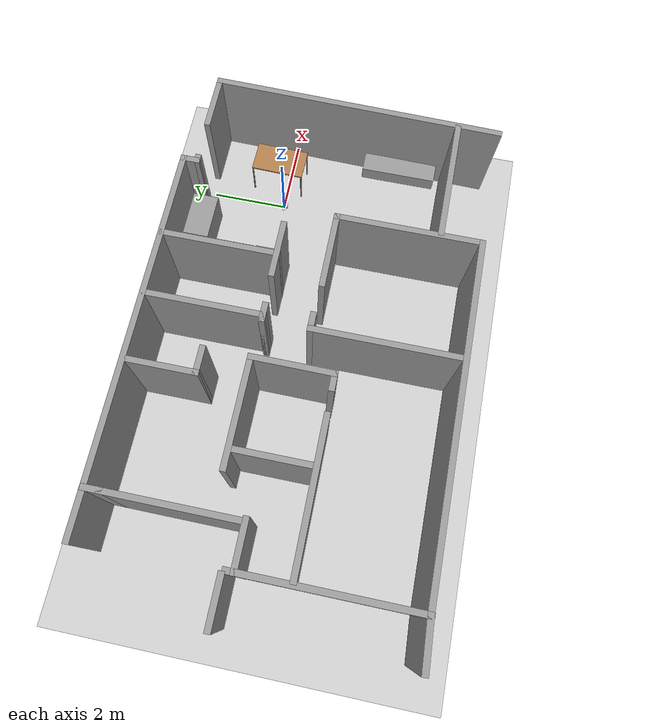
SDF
<sdf version="1.6">
 <world name="default">
  <model name="ground_plane">
   <static>1</static>
   <link name="link">
    <collision name="collision">
     <geometry><plane><normal>0 0 1</normal><size>100 100</size></plane></geometry>
     <surface><friction><ode><mu>100</mu><mu2>50</mu2></ode></friction></surface>
    </collision>
    <visual name="visual">
     <cast_shadows>0</cast_shadows>
     <geometry><plane><normal>0 0 1</normal><size>100 100</size></plane></geometry>
     <material>
      <script><uri>file://media/materials/scripts/gazebo.material</uri><name>Gazebo/Grey</name></script>
     </material>
    </visual>
   </link>
  </model>
  <gravity>0 0 -9.8</gravity>
  <magnetic_field>6e-06 2.3e-05 -4.2e-05</magnetic_field>
  <atmosphere type="adiabatic"/>
  <physics name="default_physics" default="0" type="ode">
   <max_step_size>0.001</max_step_size>
   <real_time_factor>1</real_time_factor>
   <real_time_update_rate>1000</real_time_update_rate>
  </physics>
  <scene><ambient>0.4 0.4 0.4 1</ambient><background>0.7 0.7 0.7 1</background><shadows>1</shadows></scene>
  <spherical_coordinates>
   <surface_model>EARTH_WGS84</surface_model>
   <latitude_deg>0</latitude_deg>
   <longitude_deg>0</longitude_deg>
   <elevation>0</elevation>
   <heading_deg>0</heading_deg>
  </spherical_coordinates>
  <model name="whiz_ex">
   <pose>-4.64105 -1.45792 0 0 -0 0</pose>
   <link name="Wall_10">
    <collision name="Wall_10_Collision">
     <geometry><box><size>1.25 0.15 2.5</size></box></geometry>
     <pose>0 0 1.25 0 -0 0</pose>
    </collision>
    <visual name="Wall_10_Visual">
     <pose>0 0 1.25 0 -0 0</pose>
     <geometry><box><size>1.25 0.15 2.5</size></box></geometry>
     <material>
      <script><uri>file://media/materials/scripts/gazebo.material</uri><name>Gazebo/Grey</name></script>
      <ambient>1 1 1 1</ambient>
     </material>
    </visual>
    <pose>-6.05295 0.541414 0 0 -0 3.14159</pose>
   </link>
   <link name="Wall_12">
    <collision name="Wall_12_Collision">
     <geometry><box><size>4.4737 0.15 2.5</size></box></geometry>
     <pose>0 0 1.25 0 -0 0</pose>
    </collision>
    <visual name="Wall_12_Visual">
     <pose>0 0 1.25 0 -0 0</pose>
     <geometry><box><size>4.4737 0.15 2.5</size></box></geometry>
     <material>
      <script><uri>file://media/materials/scripts/gazebo.material</uri><name>Gazebo/Grey</name></script>
      <ambient>1 1 1 1</ambient>
     </material>
    </visual>
    <pose>-5.40643 -1.68841 0 0 -0 1.5708</pose>
   </link>
   <link name="Wall_15">
    <collision name="Wall_15_Collision">
     <geometry><box><size>1.25111 0.15 2.5</size></box></geometry>
     <pose>0 0 1.25 0 -0 0</pose>
    </collision>
    <visual name="Wall_15_Visual">
     <pose>0 0 1.25 0 -0 0</pose>
     <geometry><box><size>1.25111 0.15 2.5</size></box></geometry>
     <material>
      <script><uri>file://media/materials/scripts/gazebo.material</uri><name>Gazebo/Grey</name></script>
      <ambient>1 1 1 1</ambient>
     </material>
    </visual>
    <pose>-5.95643 -3.86341 0 0 0 -3.09668</pose>
   </link>
   <link name="Wall_18">
    <collision name="Wall_18_Collision">
     <geometry><box><size>0.5 0.15 2.5</size></box></geometry>
     <pose>0 0 1.25 0 -0 0</pose>
    </collision>
    <visual name="Wall_18_Visual">
     <pose>0 0 1.25 0 -0 0</pose>
     <geometry><box><size>0.5 0.15 2.5</size></box></geometry>
     <material>
      <script><uri>file://media/materials/scripts/gazebo.material</uri><name>Gazebo/Grey</name></script>
      <ambient>1 1 1 1</ambient>
     </material>
    </visual>
    <pose>0.389091 -0.180158 0 0 -0 0</pose>
   </link>
   <link name="Wall_2">
    <collision name="Wall_2_Collision">
     <geometry><box><size>7.5674 0.15 2.5</size></box></geometry>
     <pose>0 0 1.25 0 -0 0</pose>
    </collision>
    <visual name="Wall_2_Visual">
     <pose>0 0 1.25 0 -0 0</pose>
     <geometry><box><size>7.5674 0.15 2.5</size></box></geometry>
     <material>
      <script><uri>file://media/materials/scripts/gazebo.material</uri><name>Gazebo/Grey</name></script>
      <ambient>1 1 1 1</ambient>
     </material>
    </visual>
    <pose>6.52247 -0.153961 0 0 0 -1.59207</pose>
   </link>
   <link name="Wall_20">
    <collision name="Wall_20_Collision">
     <geometry><box><size>3.75 0.15 2.5</size></box></geometry>
     <pose>0 0 1.25 0 -0 0</pose>
    </collision>
    <visual name="Wall_20_Visual">
     <pose>0 0 1.25 0 -0 0</pose>
     <geometry><box><size>3.75 0.15 2.5</size></box></geometry>
     <material>
      <script><uri>file://media/materials/scripts/gazebo.material</uri><name>Gazebo/Grey</name></script>
      <ambient>1 1 1 1</ambient>
     </material>
    </visual>
    <pose>0.214091 -1.98016 0 0 0 -1.5708</pose>
   </link>
   <link name="Wall_22">
    <collision name="Wall_22_Collision">
     <geometry><box><size>2 0.15 2.5</size></box></geometry>
     <pose>0 0 1.25 0 -0 0</pose>
    </collision>
    <visual name="Wall_22_Visual">
     <pose>0 0 1.25 0 -0 0</pose>
     <geometry><box><size>2 0.15 2.5</size></box></geometry>
     <material>
      <script><uri>file://media/materials/scripts/gazebo.material</uri><name>Gazebo/Grey</name></script>
      <ambient>1 1 1 1</ambient>
     </material>
    </visual>
    <pose>2.30947 -0.232759 0 0 -0 0</pose>
   </link>
   <link name="Wall_23">
    <collision name="Wall_23_Collision">
     <geometry><box><size>3.75 0.15 2.5</size></box></geometry>
     <pose>0 0 1.25 0 -0 0</pose>
    </collision>
    <visual name="Wall_23_Visual">
     <pose>0 0 1.25 0 -0 0</pose>
     <geometry><box><size>3.75 0.15 2.5</size></box></geometry>
     <material>
      <script><uri>file://media/materials/scripts/gazebo.material</uri><name>Gazebo/Grey</name></script>
      <ambient>1 1 1 1</ambient>
     </material>
    </visual>
    <pose>3.23447 -2.03276 0 0 0 -1.5708</pose>
   </link>
   <link name="Wall_25">
    <collision name="Wall_25_Collision">
     <geometry><box><size>3.25 0.15 2.5</size></box></geometry>
     <pose>0 0 1.25 0 -0 0</pose>
    </collision>
    <visual name="Wall_25_Visual">
     <pose>0 0 1.25 0 -0 0</pose>
     <geometry><box><size>3.25 0.15 2.5</size></box></geometry>
     <material>
      <script><uri>file://media/materials/scripts/gazebo.material</uri><name>Gazebo/Grey</name></script>
      <ambient>1 1 1 1</ambient>
     </material>
    </visual>
    <pose>4.85442 -2.81022 0 0 -0 0</pose>
   </link>
   <link name="Wall_27">
    <collision name="Wall_27_Collision">
     <geometry><box><size>8.79095 0.15 2.5</size></box></geometry>
     <pose>0 0 1.25 0 -0 0</pose>
    </collision>
    <visual name="Wall_27_Visual">
     <pose>0 0 1.25 0 -0 0</pose>
     <geometry><box><size>8.79095 0.15 2.5</size></box></geometry>
     <material>
      <script><uri>file://media/materials/scripts/gazebo.material</uri><name>Gazebo/Grey</name></script>
      <ambient>1 1 1 1</ambient>
     </material>
    </visual>
    <pose>-1.08598 -3.83573 0 0 -0 0.000687</pose>
   </link>
   <link name="Wall_31">
    <collision name="Wall_31_Collision">
     <geometry><box><size>2.76315 0.15 2.5</size></box></geometry>
     <pose>0 0 1.25 0 -0 0</pose>
    </collision>
    <visual name="Wall_31_Visual">
     <pose>0 0 1.25 0 -0 0</pose>
     <geometry><box><size>2.76315 0.15 2.5</size></box></geometry>
     <material>
      <script><uri>file://media/materials/scripts/gazebo.material</uri><name>Gazebo/Grey</name></script>
      <ambient>1 1 1 1</ambient>
     </material>
    </visual>
    <pose>-2.04362 1.02243 0 0 -0 0</pose>
   </link>
   <link name="Wall_33">
    <collision name="Wall_33_Collision">
     <geometry><box><size>0.5 0.15 2.5</size></box></geometry>
     <pose>0 0 1.25 0 -0 0</pose>
    </collision>
    <visual name="Wall_33_Visual">
     <pose>0 0 1.25 0 -0 0</pose>
     <geometry><box><size>0.5 0.15 2.5</size></box></geometry>
     <material>
      <script><uri>file://media/materials/scripts/gazebo.material</uri><name>Gazebo/Grey</name></script>
      <ambient>1 1 1 1</ambient>
     </material>
    </visual>
    <pose>-0.920191 -0.947573 0 0 -0 3.14159</pose>
   </link>
   <link name="Wall_38">
    <collision name="Wall_38_Collision">
     <geometry><box><size>3.75 0.15 2.5</size></box></geometry>
     <pose>0 0 1.25 0 -0 0</pose>
    </collision>
    <visual name="Wall_38_Visual">
     <pose>0 0 1.25 0 -0 0</pose>
     <geometry><box><size>3.75 0.15 2.5</size></box></geometry>
     <material>
      <script><uri>file://media/materials/scripts/gazebo.material</uri><name>Gazebo/Grey</name></script>
      <ambient>1 1 1 1</ambient>
     </material>
    </visual>
    <pose>-3.52433 -0.96048 0 0 -0 3.14159</pose>
   </link>
   <link name="Wall_4">
    <collision name="Wall_4_Collision">
     <geometry><box><size>1.5 0.15 2.5</size></box></geometry>
     <pose>0 0 1.25 0 -0 0</pose>
    </collision>
    <visual name="Wall_4_Visual">
     <pose>0 0 1.25 0 -0 0</pose>
     <geometry><box><size>1.5 0.15 2.5</size></box></geometry>
     <material>
      <script><uri>file://media/materials/scripts/gazebo.material</uri><name>Gazebo/Grey</name></script>
      <ambient>1 1 1 1</ambient>
     </material>
    </visual>
    <pose>5.92637 3.5539 0 0 -0 3.14159</pose>
   </link>
   <link name="Wall_40">
    <collision name="Wall_40_Collision">
     <geometry><box><size>2 0.15 2.5</size></box></geometry>
     <pose>0 0 1.25 0 -0 0</pose>
    </collision>
    <visual name="Wall_40_Visual">
     <pose>0 0 1.25 0 -0 0</pose>
     <geometry><box><size>2 0.15 2.5</size></box></geometry>
     <material>
      <script><uri>file://media/materials/scripts/gazebo.material</uri><name>Gazebo/Grey</name></script>
      <ambient>1 1 1 1</ambient>
     </material>
    </visual>
    <pose>-2.90026 0.016761 0 0 0 -1.5708</pose>
   </link>
   <link name="Wall_44">
    <collision name="Wall_44_Collision">
     <geometry><box><size>1.25 0.15 2.5</size></box></geometry>
     <pose>0 0 1.25 0 -0 0</pose>
    </collision>
    <visual name="Wall_44_Visual">
     <pose>0 0 1.25 0 -0 0</pose>
     <geometry><box><size>1.25 0.15 2.5</size></box></geometry>
     <material>
      <script><uri>file://media/materials/scripts/gazebo.material</uri><name>Gazebo/Grey</name></script>
      <ambient>1 1 1 1</ambient>
     </material>
    </visual>
    <pose>-4.85954 0.293641 0 0 -0 3.14159</pose>
   </link>
   <link name="Wall_47">
    <collision name="Wall_47_Collision">
     <geometry><box><size>2.12002 0.15 2.5</size></box></geometry>
     <pose>0 0 1.25 0 -0 0</pose>
    </collision>
    <visual name="Wall_47_Visual">
     <pose>0 0 1.25 0 -0 0</pose>
     <geometry><box><size>2.12002 0.15 2.5</size></box></geometry>
     <material>
      <script><uri>file://media/materials/scripts/gazebo.material</uri><name>Gazebo/Grey</name></script>
      <ambient>1 1 1 1</ambient>
     </material>
    </visual>
    <pose>-0.741115 0.037427 0 0 -0 1.56666</pose>
   </link>
   <link name="Wall_49">
    <collision name="Wall_49_Collision">
     <geometry><box><size>1.75 0.15 2.5</size></box></geometry>
     <pose>0 0 1.25 0 -0 0</pose>
    </collision>
    <visual name="Wall_49_Visual">
     <pose>0 0 1.25 0 -0 0</pose>
     <geometry><box><size>1.75 0.15 2.5</size></box></geometry>
     <material>
      <script><uri>file://media/materials/scripts/gazebo.material</uri><name>Gazebo/Grey</name></script>
      <ambient>1 1 1 1</ambient>
     </material>
    </visual>
    <pose>-1.36298 2.95769 0 0 0 -1.5708</pose>
   </link>
   <link name="Wall_50">
    <collision name="Wall_50_Collision">
     <geometry><box><size>0.75 0.15 2.5</size></box></geometry>
     <pose>0 0 1.25 0 -0 0</pose>
    </collision>
    <visual name="Wall_50_Visual">
     <pose>0 0 1.25 0 -0 0</pose>
     <geometry><box><size>0.75 0.15 2.5</size></box></geometry>
     <material>
      <script><uri>file://media/materials/scripts/gazebo.material</uri><name>Gazebo/Grey</name></script>
      <ambient>1 1 1 1</ambient>
     </material>
    </visual>
    <pose>-1.06298 2.15769 0 0 -0 0</pose>
   </link>
   <link name="Wall_52">
    <collision name="Wall_52_Collision">
     <geometry><box><size>3 0.15 2.5</size></box></geometry>
     <pose>0 0 1.25 0 -0 0</pose>
    </collision>
    <visual name="Wall_52_Visual">
     <pose>0 0 1.25 0 -0 0</pose>
     <geometry><box><size>3 0.15 2.5</size></box></geometry>
     <material>
      <script><uri>file://media/materials/scripts/gazebo.material</uri><name>Gazebo/Grey</name></script>
      <ambient>1 1 1 1</ambient>
     </material>
    </visual>
    <pose>0.325194 2.40113 0 0 0 -1.5708</pose>
   </link>
   <link name="Wall_53">
    <collision name="Wall_53_Collision">
     <geometry><box><size>0.25 0.15 2.5</size></box></geometry>
     <pose>0 0 1.25 0 -0 0</pose>
    </collision>
    <visual name="Wall_53_Visual">
     <pose>0 0 1.25 0 -0 0</pose>
     <geometry><box><size>0.25 0.15 2.5</size></box></geometry>
     <material>
      <script><uri>file://media/materials/scripts/gazebo.material</uri><name>Gazebo/Grey</name></script>
      <ambient>1 1 1 1</ambient>
     </material>
    </visual>
    <pose>0.275194 0.976133 0 0 -0 3.14159</pose>
   </link>
   <link name="Wall_54">
    <collision name="Wall_54_Collision">
     <geometry><box><size>0.5 0.15 2.5</size></box></geometry>
     <pose>0 0 1.25 0 -0 0</pose>
    </collision>
    <visual name="Wall_54_Visual">
     <pose>0 0 1.25 0 -0 0</pose>
     <geometry><box><size>0.5 0.15 2.5</size></box></geometry>
     <material>
      <script><uri>file://media/materials/scripts/gazebo.material</uri><name>Gazebo/Grey</name></script>
      <ambient>1 1 1 1</ambient>
     </material>
    </visual>
    <pose>0.400194 0.976133 0 0 -0 0</pose>
   </link>
   <link name="Wall_56">
    <collision name="Wall_56_Collision">
     <geometry><box><size>1.5 0.15 2.5</size></box></geometry>
     <pose>0 0 1.25 0 -0 0</pose>
    </collision>
    <visual name="Wall_56_Visual">
     <pose>0 0 1.25 0 -0 0</pose>
     <geometry><box><size>1.5 0.15 2.5</size></box></geometry>
     <material>
      <script><uri>file://media/materials/scripts/gazebo.material</uri><name>Gazebo/Grey</name></script>
      <ambient>1 1 1 1</ambient>
     </material>
    </visual>
    <pose>2.08001 1.00491 0 0 -0 0</pose>
   </link>
   <link name="Wall_58">
    <collision name="Wall_58_Collision">
     <geometry><box><size>3 0.15 2.5</size></box></geometry>
     <pose>0 0 1.25 0 -0 0</pose>
    </collision>
    <visual name="Wall_58_Visual">
     <pose>0 0 1.25 0 -0 0</pose>
     <geometry><box><size>3 0.15 2.5</size></box></geometry>
     <material>
      <script><uri>file://media/materials/scripts/gazebo.material</uri><name>Gazebo/Grey</name></script>
      <ambient>1 1 1 1</ambient>
     </material>
    </visual>
    <pose>1.95253 2.42395 0 0 0 -1.5708</pose>
   </link>
   <link name="Wall_6">
    <collision name="Wall_6_Collision">
     <geometry><box><size>0.25 0.15 2.5</size></box></geometry>
     <pose>0 0 1.25 0 -0 0</pose>
    </collision>
    <visual name="Wall_6_Visual">
     <pose>0 0 1.25 0 -0 0</pose>
     <geometry><box><size>0.25 0.15 2.5</size></box></geometry>
     <material>
      <script><uri>file://media/materials/scripts/gazebo.material</uri><name>Gazebo/Grey</name></script>
      <ambient>1 1 1 1</ambient>
     </material>
    </visual>
    <pose>4.14705 3.54141 0 0 -0 3.14159</pose>
   </link>
   <link name="Wall_60">
    <collision name="Wall_60_Collision">
     <geometry><box><size>0.5 0.15 2.5</size></box></geometry>
     <pose>0 0 1.25 0 -0 0</pose>
    </collision>
    <visual name="Wall_60_Visual">
     <pose>0 0 1.25 0 -0 0</pose>
     <geometry><box><size>0.5 0.15 2.5</size></box></geometry>
     <material>
      <script><uri>file://media/materials/scripts/gazebo.material</uri><name>Gazebo/Grey</name></script>
      <ambient>1 1 1 1</ambient>
     </material>
    </visual>
    <pose>-4.35804 3.71031 0 0 0 -1.5708</pose>
   </link>
   <link name="Wall_64">
    <collision name="Wall_64_Collision">
     <geometry><box><size>3.25 0.15 2.5</size></box></geometry>
     <pose>0 0 1.25 0 -0 0</pose>
    </collision>
    <visual name="Wall_64_Visual">
     <pose>0 0 1.25 0 -0 0</pose>
     <geometry><box><size>3.25 0.15 2.5</size></box></geometry>
     <material>
      <script><uri>file://media/materials/scripts/gazebo.material</uri><name>Gazebo/Grey</name></script>
      <ambient>1 1 1 1</ambient>
     </material>
    </visual>
    <pose>-4.35804 1.98531 0 0 0 -1.5708</pose>
   </link>
   <link name="Wall_7">
    <collision name="Wall_7_Collision">
     <geometry><box><size>0.5 0.15 2.5</size></box></geometry>
     <pose>0 0 1.25 0 -0 0</pose>
    </collision>
    <visual name="Wall_7_Visual">
     <pose>0 0 1.25 0 -0 0</pose>
     <geometry><box><size>0.5 0.15 2.5</size></box></geometry>
     <material>
      <script><uri>file://media/materials/scripts/gazebo.material</uri><name>Gazebo/Grey</name></script>
      <ambient>1 1 1 1</ambient>
     </material>
    </visual>
    <pose>4.09705 3.71641 0 0 -0 1.5708</pose>
   </link>
   <link name="Wall_8">
    <collision name="Wall_8_Collision">
     <geometry><box><size>9.75 0.15 2.5</size></box></geometry>
     <pose>0 0 1.25 0 -0 0</pose>
    </collision>
    <visual name="Wall_8_Visual">
     <pose>0 0 1.25 0 -0 0</pose>
     <geometry><box><size>9.75 0.15 2.5</size></box></geometry>
     <material>
      <script><uri>file://media/materials/scripts/gazebo.material</uri><name>Gazebo/Grey</name></script>
      <ambient>1 1 1 1</ambient>
     </material>
    </visual>
    <pose>-0.702951 3.89141 0 0 -0 3.14159</pose>
   </link>
   <static>1</static>
  </model>
  <model name="table">
   <static>0</static>
   <link name="link">
    <collision name="surface">
     <pose>0 0 1 0 -0 0</pose>
     <geometry><box><size>1.5 0.8 0.03</size></box></geometry>
     <surface><friction><ode><mu>0.6</mu><mu2>0.6</mu2></ode></friction></surface>
    </collision>
    <visual name="visual1">
     <pose>0 0 1 0 -0 0</pose>
     <geometry><box><size>1.4 0.8 0.04</size></box></geometry>
     <material>
      <script><uri>file://media/materials/scripts/gazebo.material</uri><name>Gazebo/Wood</name></script>
     </material>
    </visual>
    <collision name="front_left_leg">
     <pose>0.68 0.38 0.5 0 -0 0</pose>
     <geometry><cylinder><radius>0.02</radius><length>1</length></cylinder></geometry>
    </collision>
    <visual name="front_left_leg">
     <pose>0.68 0.38 0.5 0 -0 0</pose>
     <geometry><cylinder><radius>0.02</radius><length>1</length></cylinder></geometry>
     <material>
      <script><uri>file://media/materials/scripts/gazebo.material</uri><name>Gazebo/Grey</name></script>
     </material>
    </visual>
    <collision name="front_right_leg">
     <pose>0.68 -0.38 0.5 0 -0 0</pose>
     <geometry><cylinder><radius>0.02</radius><length>1</length></cylinder></geometry>
    </collision>
    <visual name="front_right_leg">
     <pose>0.68 -0.38 0.5 0 -0 0</pose>
     <geometry><cylinder><radius>0.02</radius><length>1</length></cylinder></geometry>
     <material>
      <script><uri>file://media/materials/scripts/gazebo.material</uri><name>Gazebo/Grey</name></script>
     </material>
    </visual>
    <collision name="back_right_leg">
     <pose>-0.68 -0.38 0.5 0 -0 0</pose>
     <geometry><cylinder><radius>0.02</radius><length>1</length></cylinder></geometry>
    </collision>
    <visual name="back_right_leg">
     <pose>-0.68 -0.38 0.5 0 -0 0</pose>
     <geometry><cylinder><radius>0.02</radius><length>1</length></cylinder></geometry>
     <material>
      <script><uri>file://media/materials/scripts/gazebo.material</uri><name>Gazebo/Grey</name></script>
     </material>
    </visual>
    <collision name="back_left_leg">
     <pose>-0.68 0.38 0.5 0 -0 0</pose>
     <geometry><cylinder><radius>0.02</radius><length>1</length></cylinder></geometry>
    </collision>
    <visual name="back_left_leg">
     <pose>-0.68 0.38 0.5 0 -0 0</pose>
     <geometry><cylinder><radius>0.02</radius><length>1</length></cylinder></geometry>
     <material>
      <script><uri>file://media/materials/scripts/gazebo.material</uri><name>Gazebo/Grey</name></script>
     </material>
    </visual>
    <inertial>
     <inertia><ixx>1</ixx><ixy>0</ixy><ixz>0</ixz><iyy>1</iyy><iyz>0</iyz><izz>1</izz></inertia>
     <mass>1</mass>
    </inertial>
   </link>
   <pose>0.849805 0.280665 -9e-06 1e-06 -1e-06 1.54594</pose>
  </model>
  <model name="som_o_robot_20cm">
   <link name="base_footprint">
    <inertial>
     <pose>0 0 -0.041034 0 -0 0</pose>
     <mass>0.2011</mass>
     <inertia>
      <ixx>0.00304276</ixx>
      <ixy>0</ixy>
      <ixz>0</ixz>
      <iyy>0.00294376</iyy>
      <iyz>0</iyz>
      <izz>0.0042</izz>
     </inertia>
    </inertial>
    <collision name="base_footprint_fixed_joint_lump__base_link_collision">
     <pose>0 0 0.049546 0 -0 0</pose>
     <geometry><box><size>0.2 0.13 0.183091</size></box></geometry>
    </collision>
    <collision name="base_footprint_fixed_joint_lump__imu_link_collision_1">
     <pose>0 0 0.148 0 -0 0</pose>
     <geometry><box><size>0.001 0.001 0.001</size></box></geometry>
    </collision>
    <visual name="base_footprint_visual">
     <geometry><box><size>0.001 0.001 0.001</size></box></geometry>
     <material><script><uri>__default__</uri><name>__default__</name></script></material>
    </visual>
    <visual name="base_footprint_fixed_joint_lump__base_link_visual_1">
     <pose>0 0 -0.042 0 -0 0</pose>
     <geometry>
      <mesh>
       <scale>1 1 1</scale>
       <uri>/home/obotron-tutor/sim-robot/src/som_o_description/meshes/obodroid1.stl</uri>
      </mesh>
     </geometry>
     <material>
      <script><name>Gazebo/White</name><uri>file://media/materials/scripts/gazebo.material</uri></script>
     </material>
    </visual>
    <visual name="base_footprint_fixed_joint_lump__imu_link_visual_2">
     <pose>0 0 0.148 0 -0 0</pose>
     <geometry><box><size>0.001 0.001 0.001</size></box></geometry>
    </visual>
    <visual name="base_footprint_fixed_joint_lump__lidar_link_visual_3">
     <pose>0.07 0 0.174891 0 -0 0</pose>
     <geometry><box><size>0.005 0.005 0.005</size></box></geometry>
     <material>
      <script><name>Gazebo/Blue</name><uri>file://media/materials/scripts/gazebo.material</uri></script>
     </material>
    </visual>
    <visual name="base_footprint_fixed_joint_lump__multicam_link_visual_4">
     <pose>0.07 0 0.189891 0 -0 0</pose>
     <geometry><box><size>0.003 0.003 0.003</size></box></geometry>
     <material>
      <script><name>Gazebo/Grey</name><uri>file://media/materials/scripts/gazebo.material</uri></script>
     </material>
    </visual>
    <visual name="base_footprint_fixed_joint_lump__multicam_link_left_visual_5">
     <pose>0.07 0 0.189891 0 -0 0</pose>
     <geometry><box><size>0.003 0.003 0.003</size></box></geometry>
     <material>
      <script><name>Gazebo/Red</name><uri>file://media/materials/scripts/gazebo.material</uri></script>
     </material>
    </visual>
    <visual name="base_footprint_fixed_joint_lump__multicam_link_right_visual_6">
     <pose>0.07 0 0.189891 0 -0 0</pose>
     <geometry><box><size>0.003 0.003 0.003</size></box></geometry>
     <material>
      <script><name>Gazebo/Red</name><uri>file://media/materials/scripts/gazebo.material</uri></script>
     </material>
    </visual>
    <sensor name="lidar_sensor" type="ray">
     <visualize>1</visualize>
     <update_rate>40</update_rate>
     <ray>
      <scan>
       <horizontal>
        <samples>360</samples>
        <resolution>1</resolution>
        <min_angle>-2</min_angle>
        <max_angle>2</max_angle>
       </horizontal>
       <vertical><samples>1</samples><min_angle>0</min_angle><max_angle>0</max_angle></vertical>
      </scan>
      <range><min>0.1</min><max>6</max><resolution>0.001</resolution></range>
      <noise><type>gaussian</type><mean>0.01</mean><stddev>0.015</stddev></noise>
     </ray>
     <plugin name="gazebo_ros_head_hokuyo_controller" filename="libgazebo_ros_laser.so">
      <topicName>/scan</topicName>
      <frameName>lidar_link</frameName>
      <robotNamespace>/</robotNamespace>
     </plugin>
     <pose>0.07 0 0.174891 0 -0 0</pose>
    </sensor>
    <sensor name="stereo_camera" type="multicamera">
     <update_rate>30</update_rate>
     <camera name="cam_left">
      <pose>0 0.07 0 0 -0 0</pose>
      <horizontal_fov>1.39626</horizontal_fov>
      <image><width>800</width><height>800</height><format>R8G8B8</format></image>
      <clip><near>0.02</near><far>300</far></clip>
      <noise><type>gaussian</type><mean>0</mean><stddev>0.007</stddev></noise>
     </camera>
     <camera name="cam_right">
      <pose>0 -0.07 0 0 -0 0</pose>
      <horizontal_fov>1.39626</horizontal_fov>
      <image><width>800</width><height>800</height><format>R8G8B8</format></image>
      <clip><near>0.02</near><far>300</far></clip>
      <noise><type>gaussian</type><mean>0</mean><stddev>0.007</stddev></noise>
     </camera>
     <plugin name="stereo_camera_controller" filename="libgazebo_ros_multicamera.so">
      <alwaysOn>true</alwaysOn>
      <updateRate>0.0</updateRate>
      <cameraName>multicamera</cameraName>
      <imageTopicName>image_raw</imageTopicName>
      <cameraInfoTopicName>camera_info</cameraInfoTopicName>
      <frameName>left_camera_optical_frame</frameName>
      <rightFrameName>right_camera_optical_frame</rightFrameName>
      <hackBaseline>0.07</hackBaseline>
      <distortionK1>1.0</distortionK1>
      <distortionK2>2.0</distortionK2>
      <distortionK3>0.0</distortionK3>
      <distortionT1>0.0</distortionT1>
      <distortionT2>0.0</distortionT2>
      <robotNamespace>/</robotNamespace>
     </plugin>
     <pose>0.07 0 0.189891 0 -0 0</pose>
    </sensor>
   </link>
   <link name="front_left_wheel">
    <pose>0 -0.082 0 0 -0 0</pose>
    <inertial>
     <mass>2.5</mass>
     <inertia>
      <ixx>0.0012225</ixx>
      <ixy>0</ixy>
      <ixz>0</ixz>
      <iyy>0.0012225</iyy>
      <iyz>0</iyz>
      <izz>0.002205</izz>
     </inertia>
    </inertial>
    <collision name="front_left_wheel_collision">
     <pose>0 0 0 1.5708 -0 0</pose>
     <geometry><cylinder><length>0.024</length><radius>0.042</radius></cylinder></geometry>
     <surface>
      <contact><ode><kp>1e+07</kp><kd>1</kd></ode></contact>
      <friction><ode><mu>1</mu><mu2>1</mu2><fdir1>1 0 0</fdir1></ode></friction>
     </surface>
    </collision>
    <visual name="front_left_wheel_visual">
     <pose>0 0 0 1.5708 -0 0</pose>
     <geometry><cylinder><length>0.024</length><radius>0.042</radius></cylinder></geometry>
     <material>
      <script><name>Gazebo/Grey</name><uri>file://media/materials/scripts/gazebo.material</uri></script>
     </material>
    </visual>
   </link>
   <joint name="front_left_wheel_joint" type="revolute">
    <child>front_left_wheel</child>
    <parent>base_footprint</parent>
    <axis>
     <xyz>0 1 0</xyz>
     <limit><lower>-1e+16</lower><upper>1e+16</upper></limit>
     <dynamics><spring_reference>0</spring_reference><spring_stiffness>0</spring_stiffness></dynamics>
     <use_parent_model_frame>1</use_parent_model_frame>
    </axis>
   </joint>
   <link name="front_right_wheel">
    <pose>0 0.082 0 0 -0 0</pose>
    <inertial>
     <mass>2.5</mass>
     <inertia>
      <ixx>0.0012225</ixx>
      <ixy>0</ixy>
      <ixz>0</ixz>
      <iyy>0.0012225</iyy>
      <iyz>0</iyz>
      <izz>0.002205</izz>
     </inertia>
    </inertial>
    <collision name="front_right_wheel_collision">
     <pose>0 0 0 1.5708 -0 0</pose>
     <geometry><cylinder><length>0.024</length><radius>0.042</radius></cylinder></geometry>
     <surface>
      <contact><ode><kp>1e+07</kp><kd>1</kd></ode></contact>
      <friction><ode><mu>1</mu><mu2>1</mu2><fdir1>1 0 0</fdir1></ode></friction>
     </surface>
    </collision>
    <visual name="front_right_wheel_visual">
     <pose>0 0 0 1.5708 -0 0</pose>
     <geometry><cylinder><length>0.024</length><radius>0.042</radius></cylinder></geometry>
     <material>
      <script><name>Gazebo/Grey</name><uri>file://media/materials/scripts/gazebo.material</uri></script>
     </material>
    </visual>
   </link>
   <joint name="front_right_wheel_joint" type="revolute">
    <child>front_right_wheel</child>
    <parent>base_footprint</parent>
    <axis>
     <xyz>0 1 0</xyz>
     <limit><lower>-1e+16</lower><upper>1e+16</upper></limit>
     <dynamics><spring_reference>0</spring_reference><spring_stiffness>0</spring_stiffness></dynamics>
     <use_parent_model_frame>1</use_parent_model_frame>
    </axis>
   </joint>
   <plugin name="imu_controller" filename="libgazebo_ros_imu.so">
    <alwaysOn>true</alwaysOn>
    <updateRate>50.0</updateRate>
    <topicName>imu_data</topicName>
    <gaussianNoise>2.89e-08</gaussianNoise>
    <xyzOffsets>0 0 0</xyzOffsets>
    <rpyOffsets>0 0 0</rpyOffsets>
    <robotNamespace>/</robotNamespace>
    <bodyName>base_footprint</bodyName>
    <xyzOffset>0 0 -0.148</xyzOffset>
    <rpyOffset>0 -0 0</rpyOffset>
   </plugin>
   <static>0</static>
   <plugin name="differential_drive_controller" filename="libgazebo_ros_diff_drive.so">
    <rosDebugLevel>Debug</rosDebugLevel>
    <publishWheelTF>false</publishWheelTF>
    <robotNamespace>/</robotNamespace>
    <publishTf>1</publishTf>
    <publishWheelJointState>false</publishWheelJointState>
    <alwaysOn>true</alwaysOn>
    <updateRate>100.0</updateRate>
    <leftJoint>front_left_wheel_joint</leftJoint>
    <rightJoint>front_right_wheel_joint</rightJoint>
    <wheelSeparation>0.164</wheelSeparation>
    <wheelDiameter>0.084</wheelDiameter>
    <broadcastTF>1</broadcastTF>
    <wheelTorque>30</wheelTorque>
    <wheelAcceleration>1.8</wheelAcceleration>
    <commandTopic>cmd_vel</commandTopic>
    <odometryFrame>odom</odometryFrame>
    <odometryTopic>odom</odometryTopic>
    <robotBaseFrame>base_footprint</robotBaseFrame>
    <legacyMode>true</legacyMode>
    <odometrySource>1</odometrySource>
   </plugin>
   <pose>-1.2e-05 0.00012 0.041999 0 -7e-06 -0.002699</pose>
  </model>
  <model name="whiz_ex_decor">
   <link name="link_1">
    <pose>-1.16692 0.520073 0 0 -0 0</pose>
    <inertial>
     <mass>0.472639</mass>
     <inertia>
      <ixx>0.0575927</ixx>
      <ixy>0</ixy>
      <ixz>0</ixz>
      <iyy>0.0584211</iyy>
      <iyz>0</iyz>
      <izz>0.0372405</izz>
     </inertia>
    </inertial>
    <visual name="visual">
     <geometry><box><size>0.695177 0.679886 1</size></box></geometry>
     <material>
      <lighting>1</lighting>
      <script><uri>file://media/materials/scripts/gazebo.material</uri><name>Gazebo/Grey</name></script>
      <ambient>0.3 0.3 0.3 1</ambient>
      <diffuse>0.7 0.7 0.7 1</diffuse>
      <specular>0.01 0.01 0.01 1</specular>
      <emissive>0 0 0 1</emissive>
     </material>
    </visual>
    <collision name="collision">
     <geometry><box><size>0.695177 0.679886 1</size></box></geometry>
     <surface>
      <friction>
       <ode><mu>1</mu><mu2>1</mu2><fdir1>0 0 0</fdir1><slip1>0</slip1><slip2>0</slip2></ode>
       <torsional>
        <coefficient>1</coefficient>
        <patch_radius>0</patch_radius>
        <surface_radius>0</surface_radius>
        <use_patch_radius>1</use_patch_radius>
        <ode><slip>0</slip></ode>
       </torsional>
      </friction>
      <bounce><restitution_coefficient>0</restitution_coefficient><threshold>1e+06</threshold></bounce>
      <contact>
       <collide_without_contact>0</collide_without_contact>
       <collide_without_contact_bitmask>1</collide_without_contact_bitmask>
       <collide_bitmask>1</collide_bitmask>
       <ode>
        <soft_cfm>0</soft_cfm>
        <soft_erp>0.2</soft_erp>
        <kp>1e+13</kp>
        <kd>1</kd>
        <max_vel>0.01</max_vel>
        <min_depth>0</min_depth>
       </ode>
       <bullet>
        <split_impulse>1</split_impulse>
        <split_impulse_penetration_threshold>-0.01</split_impulse_penetration_threshold>
        <soft_cfm>0</soft_cfm>
        <soft_erp>0.2</soft_erp>
        <kp>1e+13</kp>
        <kd>1</kd>
       </bullet>
      </contact>
     </surface>
    </collision>
   </link>
   <link name="link_1_clone">
    <pose>-1.18525 1.90209 0 0 -0 0</pose>
    <inertial>
     <mass>1.35203</mass>
     <inertia>
      <ixx>0.538842</ixx>
      <ixy>0</ixy>
      <ixz>0</ixz>
      <iyy>0.167119</iyy>
      <iyz>0</iyz>
      <izz>0.480623</izz>
     </inertia>
    </inertial>
    <visual name="visual">
     <geometry><box><size>0.695177 1.94488 1</size></box></geometry>
     <material>
      <lighting>1</lighting>
      <script><uri>file://media/materials/scripts/gazebo.material</uri><name>Gazebo/Grey</name></script>
      <ambient>0.3 0.3 0.3 1</ambient>
      <diffuse>0.7 0.7 0.7 1</diffuse>
      <specular>0.01 0.01 0.01 1</specular>
      <emissive>0 0 0 1</emissive>
      <shader type="pixel"/>
     </material>
    </visual>
    <collision name="collision">
     <geometry><box><size>0.695177 1.94488 1</size></box></geometry>
     <surface>
      <friction>
       <ode><mu>1</mu><mu2>1</mu2><fdir1>0 0 0</fdir1><slip1>0</slip1><slip2>0</slip2></ode>
       <torsional>
        <coefficient>1</coefficient>
        <patch_radius>0</patch_radius>
        <surface_radius>0</surface_radius>
        <use_patch_radius>1</use_patch_radius>
        <ode><slip>0</slip></ode>
       </torsional>
      </friction>
      <bounce><restitution_coefficient>0</restitution_coefficient><threshold>1e+06</threshold></bounce>
      <contact>
       <collide_without_contact>0</collide_without_contact>
       <collide_without_contact_bitmask>1</collide_without_contact_bitmask>
       <collide_bitmask>1</collide_bitmask>
       <ode>
        <soft_cfm>0</soft_cfm>
        <soft_erp>0.2</soft_erp>
        <kp>1e+13</kp>
        <kd>1</kd>
        <max_vel>0.01</max_vel>
        <min_depth>0</min_depth>
       </ode>
       <bullet>
        <split_impulse>1</split_impulse>
        <split_impulse_penetration_threshold>-0.01</split_impulse_penetration_threshold>
        <soft_cfm>0</soft_cfm>
        <soft_erp>0.2</soft_erp>
        <kp>1e+13</kp>
        <kd>1</kd>
       </bullet>
      </contact>
     </surface>
    </collision>
   </link>
   <link name="link_1_clone_0">
    <pose>-0.221468 2.53799 0 0 -0 0</pose>
    <inertial>
     <mass>0.824592</mass>
     <inertia>
      <ixx>0.100479</ixx>
      <ixy>0</ixy>
      <ixz>0</ixz>
      <iyy>0.169797</iyy>
      <iyz>0</iyz>
      <izz>0.132844</izz>
     </inertia>
    </inertial>
    <visual name="visual">
     <geometry><box><size>1.21285 0.679886 1</size></box></geometry>
     <material>
      <lighting>1</lighting>
      <script><uri>file://media/materials/scripts/gazebo.material</uri><name>Gazebo/Grey</name></script>
      <ambient>0.3 0.3 0.3 1</ambient>
      <diffuse>0.7 0.7 0.7 1</diffuse>
      <specular>0.01 0.01 0.01 1</specular>
      <emissive>0 0 0 1</emissive>
      <shader type="pixel"/>
     </material>
    </visual>
    <collision name="collision">
     <geometry><box><size>1.21285 0.679886 1</size></box></geometry>
     <surface>
      <friction>
       <ode><mu>1</mu><mu2>1</mu2><fdir1>0 0 0</fdir1><slip1>0</slip1><slip2>0</slip2></ode>
       <torsional>
        <coefficient>1</coefficient>
        <patch_radius>0</patch_radius>
        <surface_radius>0</surface_radius>
        <use_patch_radius>1</use_patch_radius>
        <ode><slip>0</slip></ode>
       </torsional>
      </friction>
      <bounce><restitution_coefficient>0</restitution_coefficient><threshold>1e+06</threshold></bounce>
      <contact>
       <collide_without_contact>0</collide_without_contact>
       <collide_without_contact_bitmask>1</collide_without_contact_bitmask>
       <collide_bitmask>1</collide_bitmask>
       <ode>
        <soft_cfm>0</soft_cfm>
        <soft_erp>0.2</soft_erp>
        <kp>1e+13</kp>
        <kd>1</kd>
        <max_vel>0.01</max_vel>
        <min_depth>0</min_depth>
       </ode>
       <bullet>
        <split_impulse>1</split_impulse>
        <split_impulse_penetration_threshold>-0.01</split_impulse_penetration_threshold>
        <soft_cfm>0</soft_cfm>
        <soft_erp>0.2</soft_erp>
        <kp>1e+13</kp>
        <kd>1</kd>
       </bullet>
      </contact>
     </surface>
    </collision>
   </link>
   <link name="link_3">
    <pose>0.026896 -2.48365 0 0 -0 0</pose>
    <inertial>
     <mass>0.426901</mass>
     <inertia>
      <ixx>0.148598</ixx>
      <ixy>0</ixy>
      <ixz>0</ixz>
      <iyy>0.0157966</iyy>
      <iyz>0</iyz>
      <izz>0.15306</izz>
     </inertia>
    </inertial>
    <visual name="visual">
     <geometry><box><size>0.53359 2.00442 0.399135</size></box></geometry>
     <material>
      <lighting>1</lighting>
      <script><uri>file://media/materials/scripts/gazebo.material</uri><name>Gazebo/Grey</name></script>
      <ambient>0.3 0.3 0.3 1</ambient>
      <diffuse>0.7 0.7 0.7 1</diffuse>
      <specular>0.01 0.01 0.01 1</specular>
      <emissive>0 0 0 1</emissive>
     </material>
    </visual>
    <collision name="collision">
     <geometry><box><size>0.53359 2.00442 0.399135</size></box></geometry>
     <surface>
      <friction>
       <ode><mu>1</mu><mu2>1</mu2><fdir1>0 0 0</fdir1><slip1>0</slip1><slip2>0</slip2></ode>
       <torsional>
        <coefficient>1</coefficient>
        <patch_radius>0</patch_radius>
        <surface_radius>0</surface_radius>
        <use_patch_radius>1</use_patch_radius>
        <ode><slip>0</slip></ode>
       </torsional>
      </friction>
      <bounce><restitution_coefficient>0</restitution_coefficient><threshold>1e+06</threshold></bounce>
      <contact>
       <collide_without_contact>0</collide_without_contact>
       <collide_without_contact_bitmask>1</collide_without_contact_bitmask>
       <collide_bitmask>1</collide_bitmask>
       <ode>
        <soft_cfm>0</soft_cfm>
        <soft_erp>0.2</soft_erp>
        <kp>1e+13</kp>
        <kd>1</kd>
        <max_vel>0.01</max_vel>
        <min_depth>0</min_depth>
       </ode>
       <bullet>
        <split_impulse>1</split_impulse>
        <split_impulse_penetration_threshold>-0.01</split_impulse_penetration_threshold>
        <soft_cfm>0</soft_cfm>
        <soft_erp>0.2</soft_erp>
        <kp>1e+13</kp>
        <kd>1</kd>
       </bullet>
      </contact>
     </surface>
    </collision>
   </link>
   <link name="link_3_clone">
    <pose>2.54673 -2.47651 0 0 -0 0</pose>
    <inertial>
     <mass>0.426901</mass>
     <inertia>
      <ixx>0.148598</ixx>
      <ixy>0</ixy>
      <ixz>0</ixz>
      <iyy>0.0157966</iyy>
      <iyz>0</iyz>
      <izz>0.15306</izz>
     </inertia>
    </inertial>
    <visual name="visual">
     <geometry><box><size>0.53359 2.00442 0.399135</size></box></geometry>
     <material>
      <lighting>1</lighting>
      <script><uri>file://media/materials/scripts/gazebo.material</uri><name>Gazebo/Grey</name></script>
      <ambient>0.3 0.3 0.3 1</ambient>
      <diffuse>0.7 0.7 0.7 1</diffuse>
      <specular>0.01 0.01 0.01 1</specular>
      <emissive>0 0 0 1</emissive>
      <shader type="pixel"/>
     </material>
    </visual>
    <collision name="collision">
     <geometry><box><size>0.53359 2.00442 0.399135</size></box></geometry>
     <surface>
      <friction>
       <ode><mu>1</mu><mu2>1</mu2><fdir1>0 0 0</fdir1><slip1>0</slip1><slip2>0</slip2></ode>
       <torsional>
        <coefficient>1</coefficient>
        <patch_radius>0</patch_radius>
        <surface_radius>0</surface_radius>
        <use_patch_radius>1</use_patch_radius>
        <ode><slip>0</slip></ode>
       </torsional>
      </friction>
      <bounce><restitution_coefficient>0</restitution_coefficient><threshold>1e+06</threshold></bounce>
      <contact>
       <collide_without_contact>0</collide_without_contact>
       <collide_without_contact_bitmask>1</collide_without_contact_bitmask>
       <collide_bitmask>1</collide_bitmask>
       <ode>
        <soft_cfm>0</soft_cfm>
        <soft_erp>0.2</soft_erp>
        <kp>1e+13</kp>
        <kd>1</kd>
        <max_vel>0.01</max_vel>
        <min_depth>0</min_depth>
       </ode>
       <bullet>
        <split_impulse>1</split_impulse>
        <split_impulse_penetration_threshold>-0.01</split_impulse_penetration_threshold>
        <soft_cfm>0</soft_cfm>
        <soft_erp>0.2</soft_erp>
        <kp>1e+13</kp>
        <kd>1</kd>
       </bullet>
      </contact>
     </surface>
    </collision>
   </link>
   <static>0</static>
   <pose>-1.02681 -0.523293 0.500008 -4e-06 -9e-06 0.000167</pose>
  </model>
  <light name="user_spot_light_0" type="spot">
   <pose>-1.61217 1.27697 1 0 -0 0</pose>
   <diffuse>0.5 0.5 0.5 1</diffuse>
   <specular>0.1 0.1 0.1 1</specular>
   <direction>0 0 -1</direction>
   <attenuation>
    <range>20</range>
    <constant>0.5</constant>
    <linear>0.01</linear>
    <quadratic>0.001</quadratic>
   </attenuation>
   <cast_shadows>0</cast_shadows>
   <spot><inner_angle>0.6</inner_angle><outer_angle>1</outer_angle><falloff>1</falloff></spot>
  </light>
  <light name="user_spot_light_0_clone" type="spot">
   <pose>0.891169 1.14125 2.68705 0 -0 0</pose>
   <diffuse>0.494118 0.494118 0.494118 1</diffuse>
   <specular>0.0941176 0.0941176 0.0941176 1</specular>
   <direction>0 0 -1</direction>
   <attenuation>
    <range>20</range>
    <constant>0.5</constant>
    <linear>0.01</linear>
    <quadratic>0.001</quadratic>
   </attenuation>
   <spot><inner_angle>0.6</inner_angle><outer_angle>1.5</outer_angle><falloff>1</falloff></spot>
  </light>
  <light name="user_spot_light_0_clone_0" type="spot">
   <pose>-1.4626 -1.25994 2.68705 0 -0 0</pose>
   <diffuse>0.494118 0.494118 0.494118 1</diffuse>
   <specular>0.0941176 0.0941176 0.0941176 1</specular>
   <direction>0 0 -1</direction>
   <attenuation>
    <range>20</range>
    <constant>0.5</constant>
    <linear>0.01</linear>
    <quadratic>0.001</quadratic>
   </attenuation>
   <spot><inner_angle>0.6</inner_angle><outer_angle>1.5</outer_angle><falloff>1</falloff></spot>
  </light>
  <light name="user_spot_light_0_clone_1" type="spot">
   <pose>0.888727 -1.20588 2.68705 0 -0 0</pose>
   <diffuse>0.494118 0.494118 0.494118 1</diffuse>
   <specular>0.0941176 0.0941176 0.0941176 1</specular>
   <direction>0 0 -1</direction>
   <attenuation>
    <range>20</range>
    <constant>0.5</constant>
    <linear>0.01</linear>
    <quadratic>0.001</quadratic>
   </attenuation>
   <spot><inner_angle>0.6</inner_angle><outer_angle>1.5</outer_angle><falloff>1</falloff></spot>
  </light>
  <light name="user_spot_light_0_clone_2" type="spot">
   <pose>-0.441953 -2.94571 2.68705 0 -0 0</pose>
   <diffuse>0.494118 0.494118 0.494118 1</diffuse>
   <specular>0.0941176 0.0941176 0.0941176 1</specular>
   <direction>0 0 -1</direction>
   <attenuation>
    <range>20</range>
    <constant>0.5</constant>
    <linear>0.01</linear>
    <quadratic>0.001</quadratic>
   </attenuation>
   <spot><inner_angle>0.6</inner_angle><outer_angle>1.5</outer_angle><falloff>1</falloff></spot>
  </light>
  <light name="user_spot_light_0_clone_3" type="spot">
   <pose>0.803608 -3.00787 2.68705 0 -0 0</pose>
   <diffuse>0.494118 0.494118 0.494118 1</diffuse>
   <specular>0.0941176 0.0941176 0.0941176 1</specular>
   <direction>0 0 -1</direction>
   <attenuation>
    <range>20</range>
    <constant>0.5</constant>
    <linear>0.01</linear>
    <quadratic>0.001</quadratic>
   </attenuation>
   <spot><inner_angle>0.6</inner_angle><outer_angle>1.5</outer_angle><falloff>1</falloff></spot>
  </light>
 </world>
</sdf>
